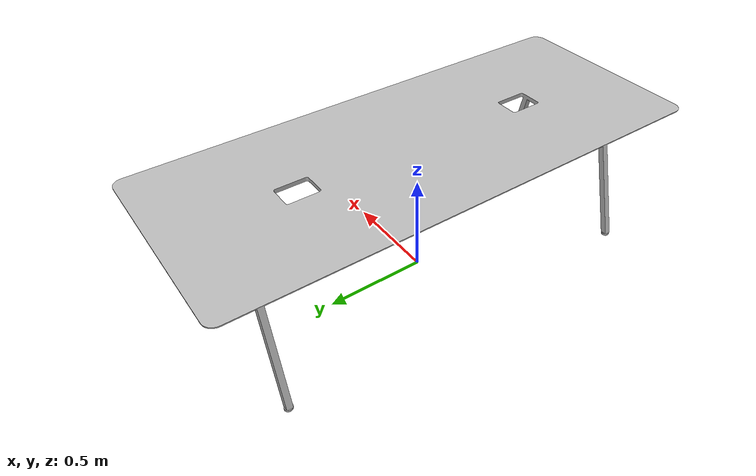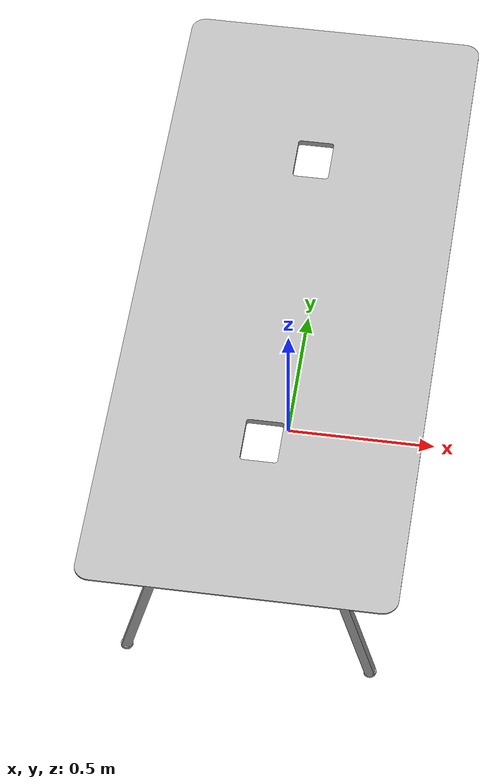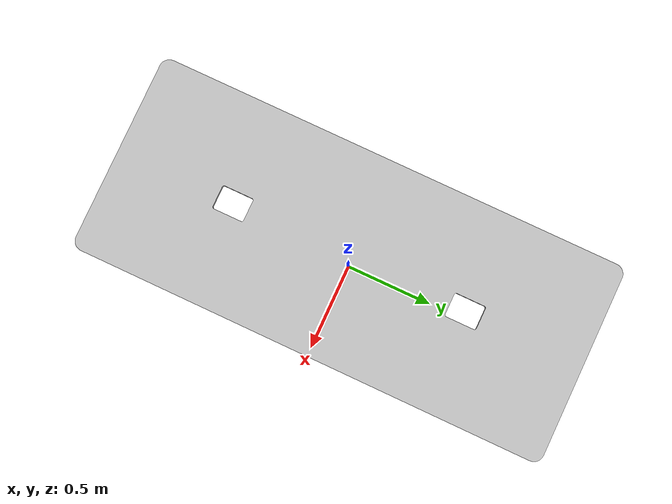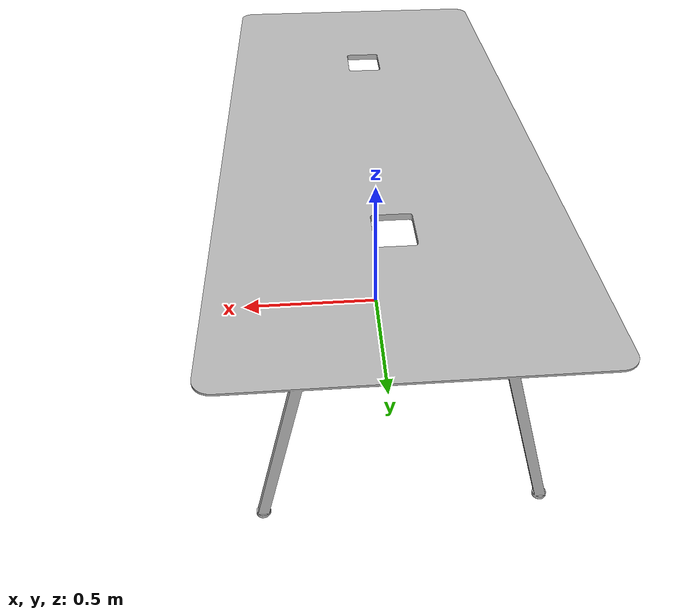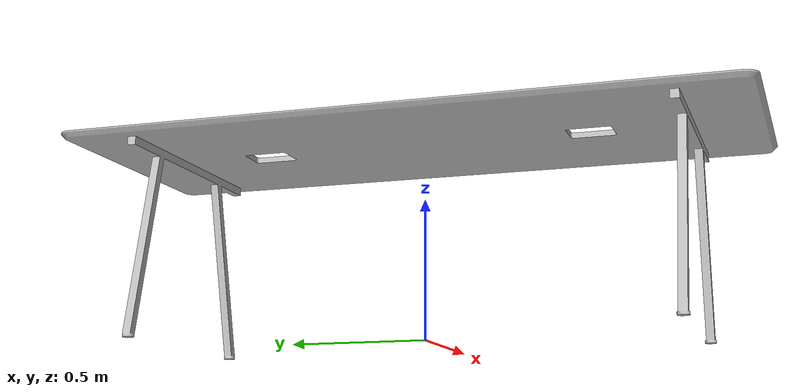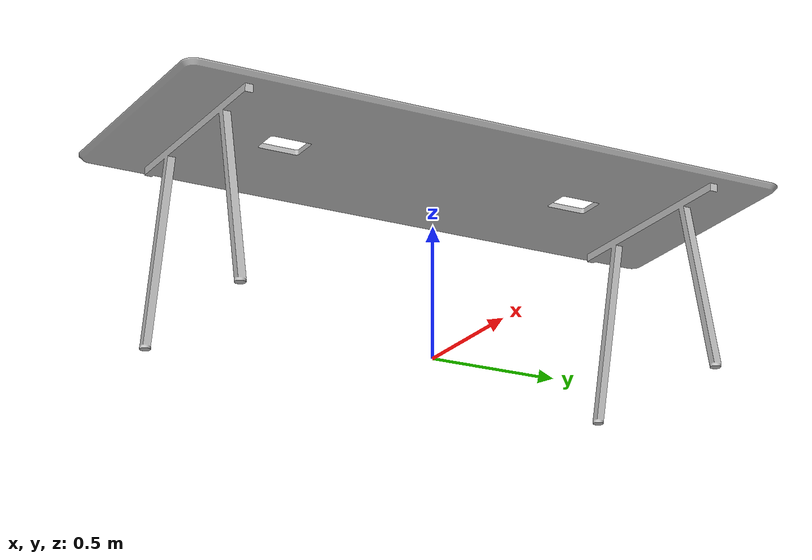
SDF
<sdf version='1.4'>
  <!-- Draw Model -->
  <model name='large_desk'>
    <static>true</static>
    <link name="large_desk">
      <collision name="collision">
        <geometry>
          <mesh>
            <uri>model://large_desk/meshes/STL/large_desk.stl</uri>
          </mesh>
        </geometry>
      </collision>

      <visual name="visual">
        <geometry>
          <mesh>
            <uri>model://large_desk/meshes/DAE/large_desk.dae</uri>
          </mesh>
        </geometry>
      </visual>
    </link>
  </model>
</sdf>
